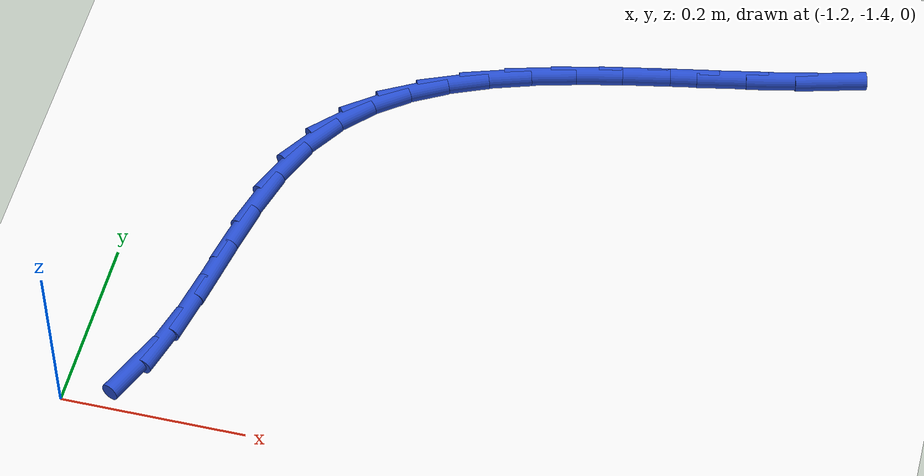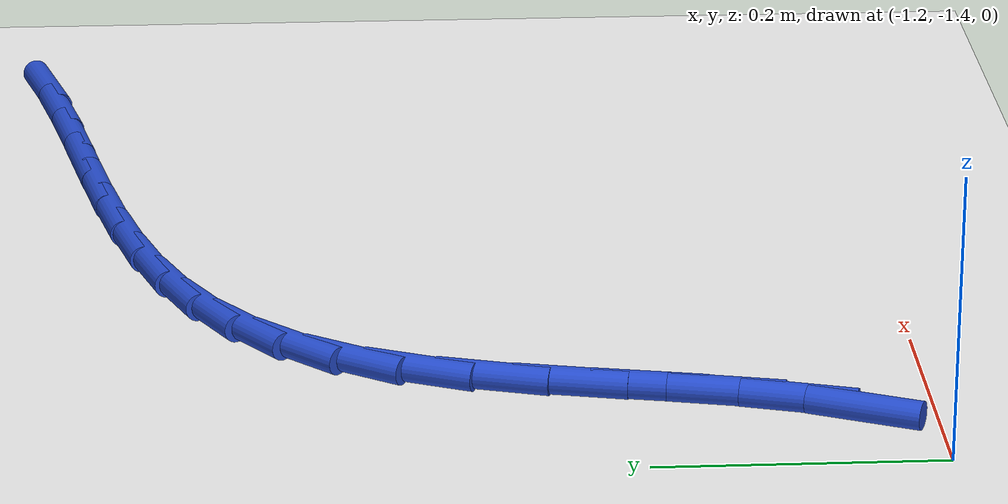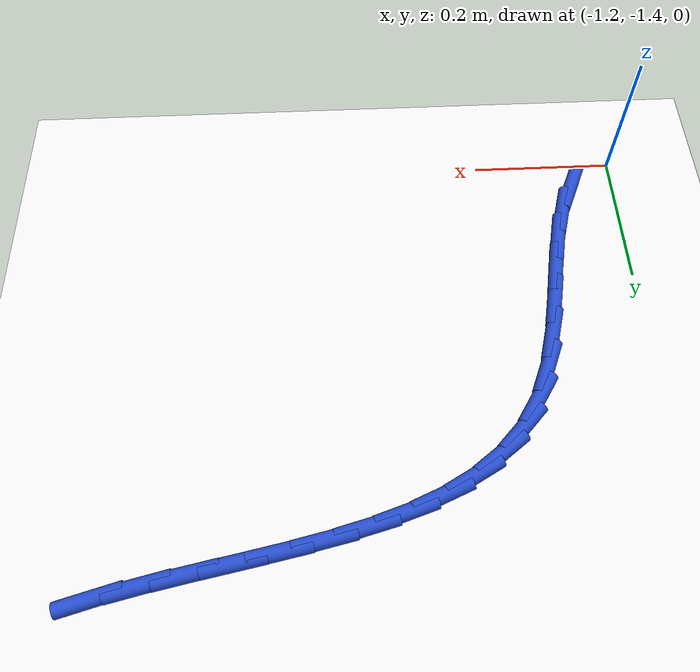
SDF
<sdf version="1.6">
 <world name="default">
  <model name="ground_plane">
   <static>1</static>
   <link name="link">
    <collision name="collision">
     <geometry><plane><normal>0 0 1</normal><size>100 100</size></plane></geometry>
     <surface><friction><ode><mu>100</mu><mu2>50</mu2></ode></friction></surface>
    </collision>
    <visual name="visual">
     <cast_shadows>0</cast_shadows>
     <geometry><plane><normal>0 0 1</normal><size>100 100</size></plane></geometry>
     <material>
      <script><uri>file://media/materials/scripts/gazebo.material</uri><name>Gazebo/WhiteGlow</name></script>
     </material>
    </visual>
   </link>
  </model>
  <model name="line">
   <link name="link_121">
    <pose>-1.134058623391943 -1.3503663534976353 0.01 0 1.57 1.1595654310829193</pose>
    <collision name="collision">
     <geometry><cylinder><radius>0.01</radius><length>0.08</length></cylinder></geometry>
    </collision>
    <visual name="visual">
     <material>
      <script><name>Gazebo/Blue</name><uri>file://media/materials/scripts/gazebo.material</uri></script>
     </material>
     <geometry><cylinder><radius>0.01</radius><length>0.08</length></cylinder></geometry>
    </visual>
   </link>
   <link name="link_122">
    <pose>-1.1157261847670434 -1.308328674634414 0.01 0 1.57 1.2904469356754542</pose>
    <collision name="collision">
     <geometry><cylinder><radius>0.01</radius><length>0.08</length></cylinder></geometry>
    </collision>
    <visual name="visual">
     <material>
      <script><name>Gazebo/Blue</name><uri>file://media/materials/scripts/gazebo.material</uri></script>
     </material>
     <geometry><cylinder><radius>0.01</radius><length>0.08</length></cylinder></geometry>
    </visual>
   </link>
   <link name="link_123">
    <pose>-1.1020016557078158 -1.260662912207385 0.01 0 1.57 1.359393198139736</pose>
    <collision name="collision">
     <geometry><cylinder><radius>0.01</radius><length>0.08</length></cylinder></geometry>
    </collision>
    <visual name="visual">
     <material>
      <script><name>Gazebo/Blue</name><uri>file://media/materials/scripts/gazebo.material</uri></script>
     </material>
     <geometry><cylinder><radius>0.01</radius><length>0.08</length></cylinder></geometry>
    </visual>
   </link>
   <link name="link_124">
    <pose>-1.091009764910034 -1.209444873591739 0.01 0 1.57 1.380790384070157</pose>
    <collision name="collision">
     <geometry><cylinder><radius>0.01</radius><length>0.08</length></cylinder></geometry>
    </collision>
    <visual name="visual">
     <material>
      <script><name>Gazebo/Blue</name><uri>file://media/materials/scripts/gazebo.material</uri></script>
     </material>
     <geometry><cylinder><radius>0.01</radius><length>0.08</length></cylinder></geometry>
    </visual>
   </link>
   <link name="link_125">
    <pose>-1.0808752410694722 -1.1567503661626675 0.01 0 1.57 1.3599016223477727</pose>
    <collision name="collision">
     <geometry><cylinder><radius>0.01</radius><length>0.08</length></cylinder></geometry>
    </collision>
    <visual name="visual">
     <material>
      <script><name>Gazebo/Blue</name><uri>file://media/materials/scripts/gazebo.material</uri></script>
     </material>
     <geometry><cylinder><radius>0.01</radius><length>0.08</length></cylinder></geometry>
    </visual>
   </link>
   <link name="link_126">
    <pose>-1.0697228128819043 -1.1046551972953598 0.01 0 1.57 1.293889114244265</pose>
    <collision name="collision">
     <geometry><cylinder><radius>0.01</radius><length>0.08</length></cylinder></geometry>
    </collision>
    <visual name="visual">
     <material>
      <script><name>Gazebo/Blue</name><uri>file://media/materials/scripts/gazebo.material</uri></script>
     </material>
     <geometry><cylinder><radius>0.01</radius><length>0.08</length></cylinder></geometry>
    </visual>
   </link>
   <link name="link_127">
    <pose>-1.055677209043105 -1.0552351743650088 0.01 0 1.57 1.1721599092029091</pose>
    <collision name="collision">
     <geometry><cylinder><radius>0.01</radius><length>0.08</length></cylinder></geometry>
    </collision>
    <visual name="visual">
     <material>
      <script><name>Gazebo/Blue</name><uri>file://media/materials/scripts/gazebo.material</uri></script>
     </material>
     <geometry><cylinder><radius>0.01</radius><length>0.08</length></cylinder></geometry>
    </visual>
   </link>
   <link name="link_128">
    <pose>-1.0368631771086756 -1.0105660839700812 0.01 0 1.57 0.993433153722593</pose>
    <collision name="collision">
     <geometry><cylinder><radius>0.01</radius><length>0.08</length></cylinder></geometry>
    </collision>
    <visual name="visual">
     <material>
      <script><name>Gazebo/Blue</name><uri>file://media/materials/scripts/gazebo.material</uri></script>
     </material>
     <geometry><cylinder><radius>0.01</radius><length>0.08</length></cylinder></geometry>
    </visual>
   </link>
   <link name="link_129">
    <pose>-1.0118752759259817 -0.9722061502545092 0.01 0 1.57 0.8087505432057774</pose>
    <collision name="collision">
     <geometry><cylinder><radius>0.01</radius><length>0.08</length></cylinder></geometry>
    </collision>
    <visual name="visual">
     <material>
      <script><name>Gazebo/Blue</name><uri>file://media/materials/scripts/gazebo.material</uri></script>
     </material>
     <geometry><cylinder><radius>0.01</radius><length>0.08</length></cylinder></geometry>
    </visual>
   </link>
   <link name="link_130">
    <pose>-0.9809979519296604 -0.9398519512441047 0.01 0 1.57 0.6433848814664607</pose>
    <collision name="collision">
     <geometry><cylinder><radius>0.01</radius><length>0.08</length></cylinder></geometry>
    </collision>
    <visual name="visual">
     <material>
      <script><name>Gazebo/Blue</name><uri>file://media/materials/scripts/gazebo.material</uri></script>
     </material>
     <geometry><cylinder><radius>0.01</radius><length>0.08</length></cylinder></geometry>
    </visual>
   </link>
   <link name="link_131">
    <pose>-0.9448954681192179 -0.9127816442135541 0.01 0 1.57 0.5055466457385555</pose>
    <collision name="collision">
     <geometry><cylinder><radius>0.01</radius><length>0.08</length></cylinder></geometry>
    </collision>
    <visual name="visual">
     <material>
      <script><name>Gazebo/Blue</name><uri>file://media/materials/scripts/gazebo.material</uri></script>
     </material>
     <geometry><cylinder><radius>0.01</radius><length>0.08</length></cylinder></geometry>
    </visual>
   </link>
   <link name="link_132">
    <pose>-0.9042320874941604 -0.8902733864375448 0.01 0 1.57 0.3967281008912589</pose>
    <collision name="collision">
     <geometry><cylinder><radius>0.01</radius><length>0.08</length></cylinder></geometry>
    </collision>
    <visual name="visual">
     <material>
      <script><name>Gazebo/Blue</name><uri>file://media/materials/scripts/gazebo.material</uri></script>
     </material>
     <geometry><cylinder><radius>0.01</radius><length>0.08</length></cylinder></geometry>
    </visual>
   </link>
   <link name="link_133">
    <pose>-0.8596720730539933 -0.8716053351907632 0.01 0 1.57 0.31455665825631884</pose>
    <collision name="collision">
     <geometry><cylinder><radius>0.01</radius><length>0.08</length></cylinder></geometry>
    </collision>
    <visual name="visual">
     <material>
      <script><name>Gazebo/Blue</name><uri>file://media/materials/scripts/gazebo.material</uri></script>
     </material>
     <geometry><cylinder><radius>0.01</radius><length>0.08</length></cylinder></geometry>
    </visual>
   </link>
   <link name="link_134">
    <pose>-0.8118796877982227 -0.8560556477478958 0.01 0 1.57 0.25547326107790524</pose>
    <collision name="collision">
     <geometry><cylinder><radius>0.01</radius><length>0.08</length></cylinder></geometry>
    </collision>
    <visual name="visual">
     <material>
      <script><name>Gazebo/Blue</name><uri>file://media/materials/scripts/gazebo.material</uri></script>
     </material>
     <geometry><cylinder><radius>0.01</radius><length>0.08</length></cylinder></geometry>
    </visual>
   </link>
   <link name="link_135">
    <pose>-0.7615191947263538 -0.8429024813836291 0.01 0 1.57 0.21619136237104372</pose>
    <collision name="collision">
     <geometry><cylinder><radius>0.01</radius><length>0.08</length></cylinder></geometry>
    </collision>
    <visual name="visual">
     <material>
      <script><name>Gazebo/Blue</name><uri>file://media/materials/scripts/gazebo.material</uri></script>
     </material>
     <geometry><cylinder><radius>0.01</radius><length>0.08</length></cylinder></geometry>
    </visual>
   </link>
   <link name="link_136">
    <pose>-0.7092548568378919 -0.8314239933726503 0.01 0 1.57 0.1942462347214823</pose>
    <collision name="collision">
     <geometry><cylinder><radius>0.01</radius><length>0.08</length></cylinder></geometry>
    </collision>
    <visual name="visual">
     <material>
      <script><name>Gazebo/Blue</name><uri>file://media/materials/scripts/gazebo.material</uri></script>
     </material>
     <geometry><cylinder><radius>0.01</radius><length>0.08</length></cylinder></geometry>
    </visual>
   </link>
   <link name="link_137">
    <pose>-0.6557509371323446 -0.8208983409896456 0.01 0 1.57 0.1881118007447589</pose>
    <collision name="collision">
     <geometry><cylinder><radius>0.01</radius><length>0.08</length></cylinder></geometry>
    </collision>
    <visual name="visual">
     <material>
      <script><name>Gazebo/Blue</name><uri>file://media/materials/scripts/gazebo.material</uri></script>
     </material>
     <geometry><cylinder><radius>0.01</radius><length>0.08</length></cylinder></geometry>
    </visual>
   </link>
   <link name="link_138">
    <pose>-0.6016716986092163 -0.8106036815093022 0.01 0 1.57 0.19717204877216638</pose>
    <collision name="collision">
     <geometry><cylinder><radius>0.01</radius><length>0.08</length></cylinder></geometry>
    </collision>
    <visual name="visual">
     <material>
      <script><name>Gazebo/Blue</name><uri>file://media/materials/scripts/gazebo.material</uri></script>
     </material>
     <geometry><cylinder><radius>0.01</radius><length>0.08</length></cylinder></geometry>
    </visual>
   </link>
   <link name="link_139">
    <pose>-0.5476814042680133 -0.7998181722063065 0.01 0 1.57 0.2216694372860648</pose>
    <collision name="collision">
     <geometry><cylinder><radius>0.01</radius><length>0.08</length></cylinder></geometry>
    </collision>
    <visual name="visual">
     <material>
      <script><name>Gazebo/Blue</name><uri>file://media/materials/scripts/gazebo.material</uri></script>
     </material>
     <geometry><cylinder><radius>0.01</radius><length>0.08</length></cylinder></geometry>
    </visual>
   </link>
   <link name="link_140">
    <pose>-0.4944443171082412 -0.7878199703553452 0.01 0 1.57 0.2626582557583347</pose>
    <collision name="collision">
     <geometry><cylinder><radius>0.01</radius><length>0.08</length></cylinder></geometry>
    </collision>
    <visual name="visual">
     <material>
      <script><name>Gazebo/Blue</name><uri>file://media/materials/scripts/gazebo.material</uri></script>
     </material>
     <geometry><cylinder><radius>0.01</radius><length>0.08</length></cylinder></geometry>
    </visual>
   </link>
  </model>
 </world>
</sdf>
